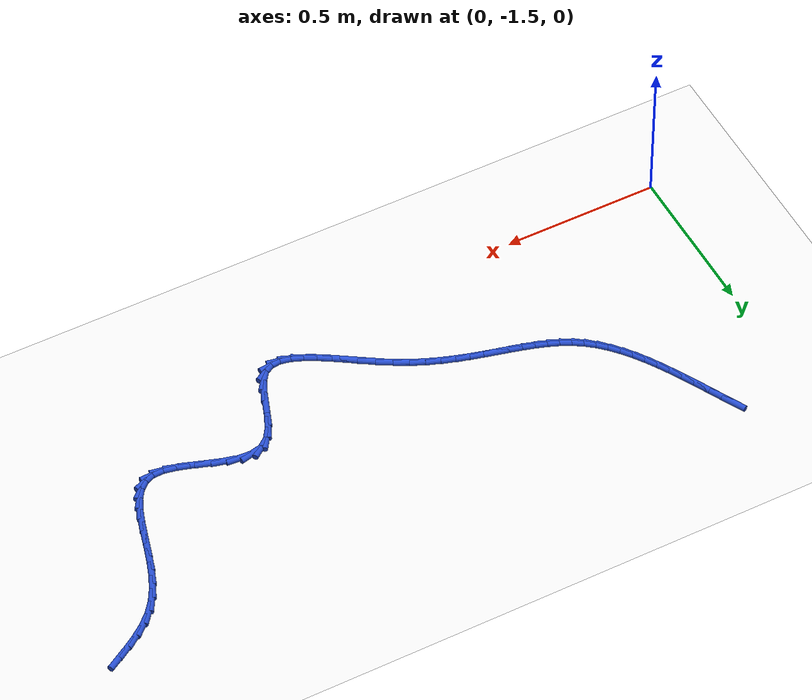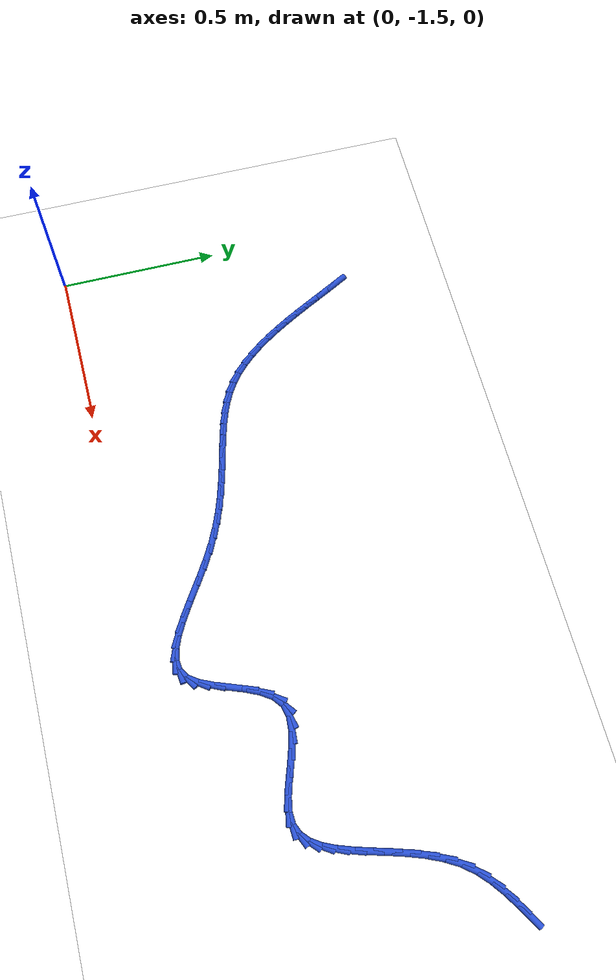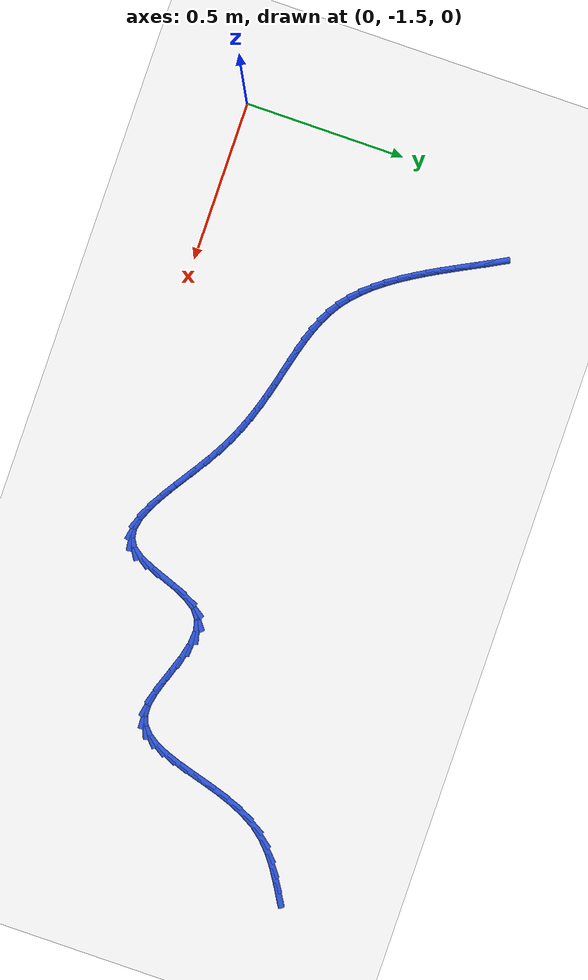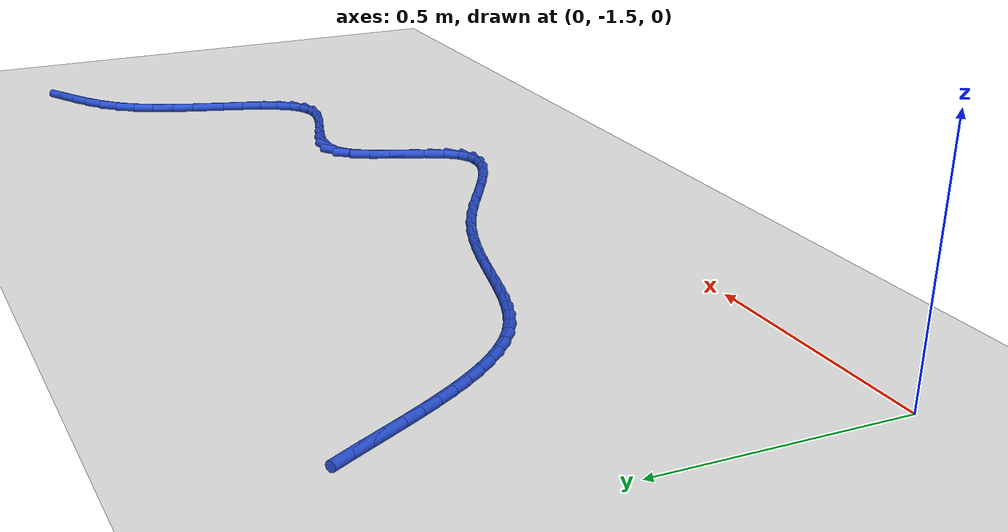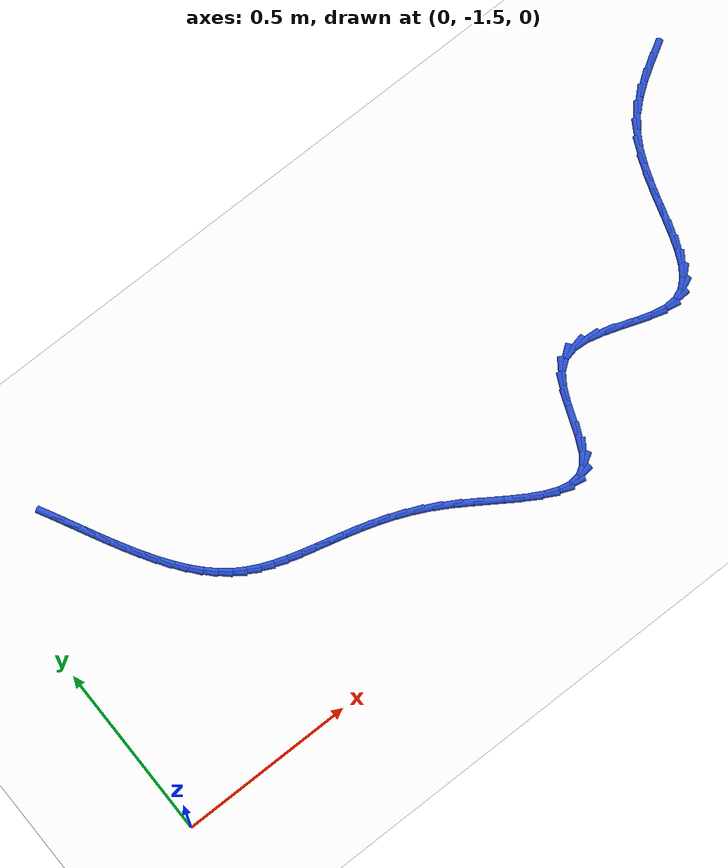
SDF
<sdf version="1.6">
 <world name="default">
  <model name="ground_plane">
   <static>1</static>
   <link name="link">
    <collision name="collision">
     <geometry><plane><normal>0 0 1</normal><size>100 100</size></plane></geometry>
     <surface><friction><ode><mu>100</mu><mu2>50</mu2></ode></friction></surface>
    </collision>
    <visual name="visual">
     <cast_shadows>0</cast_shadows>
     <geometry><plane><normal>0 0 1</normal><size>100 100</size></plane></geometry>
     <material>
      <script><uri>file://media/materials/scripts/gazebo.material</uri><name>Gazebo/WhiteGlow</name></script>
     </material>
    </visual>
   </link>
  </model>
  <model name="line">
   <link name="link_118">
    <pose>2.240297926096695 -0.631889515291526 0.01 0 1.57 0.5348942899872329</pose>
    <collision name="collision">
     <geometry><cylinder><radius>0.01</radius><length>0.08</length></cylinder></geometry>
    </collision>
    <visual name="visual">
     <material>
      <script><name>Gazebo/Blue</name><uri>file://media/materials/scripts/gazebo.material</uri></script>
     </material>
     <geometry><cylinder><radius>0.01</radius><length>0.08</length></cylinder></geometry>
    </visual>
   </link>
   <link name="link_119">
    <pose>2.2025275790639847 -0.6542688412336124 0.01 0 1.57 0.5726560668674543</pose>
    <collision name="collision">
     <geometry><cylinder><radius>0.01</radius><length>0.08</length></cylinder></geometry>
    </collision>
    <visual name="visual">
     <material>
      <script><name>Gazebo/Blue</name><uri>file://media/materials/scripts/gazebo.material</uri></script>
     </material>
     <geometry><cylinder><radius>0.01</radius><length>0.08</length></cylinder></geometry>
    </visual>
   </link>
   <link name="link_120">
    <pose>2.164555911484307 -0.6787500197444742 0.01 0 1.57 0.6460154613833728</pose>
    <collision name="collision">
     <geometry><cylinder><radius>0.01</radius><length>0.08</length></cylinder></geometry>
    </collision>
    <visual name="visual">
     <material>
      <script><name>Gazebo/Blue</name><uri>file://media/materials/scripts/gazebo.material</uri></script>
     </material>
     <geometry><cylinder><radius>0.01</radius><length>0.08</length></cylinder></geometry>
    </visual>
   </link>
   <link name="link_121">
    <pose>2.1279786991889336 -0.7063269007795656 0.01 0 1.57 0.7559745170893589</pose>
    <collision name="collision">
     <geometry><cylinder><radius>0.01</radius><length>0.08</length></cylinder></geometry>
    </collision>
    <visual name="visual">
     <material>
      <script><name>Gazebo/Blue</name><uri>file://media/materials/scripts/gazebo.material</uri></script>
     </material>
     <geometry><cylinder><radius>0.01</radius><length>0.08</length></cylinder></geometry>
    </visual>
   </link>
   <link name="link_122">
    <pose>2.0943917180091356 -0.737993334294341 0.01 0 1.57 0.9018670380567247</pose>
    <collision name="collision">
     <geometry><cylinder><radius>0.01</radius><length>0.08</length></cylinder></geometry>
    </collision>
    <visual name="visual">
     <material>
      <script><name>Gazebo/Blue</name><uri>file://media/materials/scripts/gazebo.material</uri></script>
     </material>
     <geometry><cylinder><radius>0.01</radius><length>0.08</length></cylinder></geometry>
    </visual>
   </link>
   <link name="link_123">
    <pose>2.0653619085188892 -0.7747160871468728 0.01 0 1.57 1.0488111080520988</pose>
    <collision name="collision">
     <geometry><cylinder><radius>0.01</radius><length>0.08</length></cylinder></geometry>
    </collision>
    <visual name="visual">
     <material>
      <script><name>Gazebo/Blue</name><uri>file://media/materials/scripts/gazebo.material</uri></script>
     </material>
     <geometry><cylinder><radius>0.01</radius><length>0.08</length></cylinder></geometry>
    </visual>
   </link>
   <link name="link_124">
    <pose>2.0413643449102836 -0.8164364065251083 0.01 0 1.57 1.1573748766509249</pose>
    <collision name="collision">
     <geometry><cylinder><radius>0.01</radius><length>0.08</length></cylinder></geometry>
    </collision>
    <visual name="visual">
     <material>
      <script><name>Gazebo/Blue</name><uri>file://media/materials/scripts/gazebo.material</uri></script>
     </material>
     <geometry><cylinder><radius>0.01</radius><length>0.08</length></cylinder></geometry>
    </visual>
   </link>
   <link name="link_125">
    <pose>2.02147233959226 -0.8617789551838699 0.01 0 1.57 1.230766386960012</pose>
    <collision name="collision">
     <geometry><cylinder><radius>0.01</radius><length>0.08</length></cylinder></geometry>
    </collision>
    <visual name="visual">
     <material>
      <script><name>Gazebo/Blue</name><uri>file://media/materials/scripts/gazebo.material</uri></script>
     </material>
     <geometry><cylinder><radius>0.01</radius><length>0.08</length></cylinder></geometry>
    </visual>
   </link>
   <link name="link_126">
    <pose>2.004667175334034 -0.9092819583730446 0.01 0 1.57 1.2740845284288185</pose>
    <collision name="collision">
     <geometry><cylinder><radius>0.01</radius><length>0.08</length></cylinder></geometry>
    </collision>
    <visual name="visual">
     <material>
      <script><name>Gazebo/Blue</name><uri>file://media/materials/scripts/gazebo.material</uri></script>
     </material>
     <geometry><cylinder><radius>0.01</radius><length>0.08</length></cylinder></geometry>
    </visual>
   </link>
   <link name="link_127">
    <pose>1.9899301349048213 -0.9574836413425195 0.01 0 1.57 1.2898919363264685</pose>
    <collision name="collision">
     <geometry><cylinder><radius>0.01</radius><length>0.08</length></cylinder></geometry>
    </collision>
    <visual name="visual">
     <material>
      <script><name>Gazebo/Blue</name><uri>file://media/materials/scripts/gazebo.material</uri></script>
     </material>
     <geometry><cylinder><radius>0.01</radius><length>0.08</length></cylinder></geometry>
    </visual>
   </link>
   <link name="link_128">
    <pose>1.9762425010738383 -1.004922229342182 0.01 0 1.57 1.2774570062393986</pose>
    <collision name="collision">
     <geometry><cylinder><radius>0.01</radius><length>0.08</length></cylinder></geometry>
    </collision>
    <visual name="visual">
     <material>
      <script><name>Gazebo/Blue</name><uri>file://media/materials/scripts/gazebo.material</uri></script>
     </material>
     <geometry><cylinder><radius>0.01</radius><length>0.08</length></cylinder></geometry>
    </visual>
   </link>
   <link name="link_129">
    <pose>1.9625855566103017 -1.0501359476219196 0.01 0 1.57 1.231753026772251</pose>
    <collision name="collision">
     <geometry><cylinder><radius>0.01</radius><length>0.08</length></cylinder></geometry>
    </collision>
    <visual name="visual">
     <material>
      <script><name>Gazebo/Blue</name><uri>file://media/materials/scripts/gazebo.material</uri></script>
     </material>
     <geometry><cylinder><radius>0.01</radius><length>0.08</length></cylinder></geometry>
    </visual>
   </link>
   <link name="link_130">
    <pose>1.9479405842834254 -1.0916630214316188 0.01 0 1.57 1.141530122550871</pose>
    <collision name="collision">
     <geometry><cylinder><radius>0.01</radius><length>0.08</length></cylinder></geometry>
    </collision>
    <visual name="visual">
     <material>
      <script><name>Gazebo/Blue</name><uri>file://media/materials/scripts/gazebo.material</uri></script>
     </material>
     <geometry><cylinder><radius>0.01</radius><length>0.08</length></cylinder></geometry>
    </visual>
   </link>
   <link name="link_131">
    <pose>1.9312888668624275 -1.1280416760211673 0.01 0 1.57 0.9867217538519114</pose>
    <collision name="collision">
     <geometry><cylinder><radius>0.01</radius><length>0.08</length></cylinder></geometry>
    </collision>
    <visual name="visual">
     <material>
      <script><name>Gazebo/Blue</name><uri>file://media/materials/scripts/gazebo.material</uri></script>
     </material>
     <geometry><cylinder><radius>0.01</radius><length>0.08</length></cylinder></geometry>
    </visual>
   </link>
   <link name="link_132">
    <pose>1.9116116871165223 -1.1578101366404516 0.01 0 1.57 0.7408445931452077</pose>
    <collision name="collision">
     <geometry><cylinder><radius>0.01</radius><length>0.08</length></cylinder></geometry>
    </collision>
    <visual name="visual">
     <material>
      <script><name>Gazebo/Blue</name><uri>file://media/materials/scripts/gazebo.material</uri></script>
     </material>
     <geometry><cylinder><radius>0.01</radius><length>0.08</length></cylinder></geometry>
    </visual>
   </link>
   <link name="link_133">
    <pose>1.887890327814927 -1.1795066285393598 0.01 0 1.57 0.3997924974700675</pose>
    <collision name="collision">
     <geometry><cylinder><radius>0.01</radius><length>0.08</length></cylinder></geometry>
    </collision>
    <visual name="visual">
     <material>
      <script><name>Gazebo/Blue</name><uri>file://media/materials/scripts/gazebo.material</uri></script>
     </material>
     <geometry><cylinder><radius>0.01</radius><length>0.08</length></cylinder></geometry>
    </visual>
   </link>
   <link name="link_134">
    <pose>1.8591060717268573 -1.191669376967779 0.01 0 1.57 0.040378917748941756</pose>
    <collision name="collision">
     <geometry><cylinder><radius>0.01</radius><length>0.08</length></cylinder></geometry>
    </collision>
    <visual name="visual">
     <material>
      <script><name>Gazebo/Blue</name><uri>file://media/materials/scripts/gazebo.material</uri></script>
     </material>
     <geometry><cylinder><radius>0.01</radius><length>0.08</length></cylinder></geometry>
    </visual>
   </link>
   <link name="link_135">
    <pose>1.8243736809927054 -1.1930725960288122 0.01 0 1.57 -0.19264231231949314</pose>
    <collision name="collision">
     <geometry><cylinder><radius>0.01</radius><length>0.08</length></cylinder></geometry>
    </collision>
    <visual name="visual">
     <material>
      <script><name>Gazebo/Blue</name><uri>file://media/materials/scripts/gazebo.material</uri></script>
     </material>
     <geometry><cylinder><radius>0.01</radius><length>0.08</length></cylinder></geometry>
    </visual>
   </link>
   <link name="link_136">
    <pose>1.784380933090215 -1.1852715594176126 0.01 0 1.57 -0.30354162155065684</pose>
    <collision name="collision">
     <geometry><cylinder><radius>0.01</radius><length>0.08</length></cylinder></geometry>
    </collision>
    <visual name="visual">
     <material>
      <script><name>Gazebo/Blue</name><uri>file://media/materials/scripts/gazebo.material</uri></script>
     </material>
     <geometry><cylinder><radius>0.01</radius><length>0.08</length></cylinder></geometry>
    </visual>
   </link>
   <link name="link_137">
    <pose>1.7408406691202702 -1.1716338327720202 0.01 0 1.57 -0.3406120776976363</pose>
    <collision name="collision">
     <geometry><cylinder><radius>0.01</radius><length>0.08</length></cylinder></geometry>
    </collision>
    <visual name="visual">
     <material>
      <script><name>Gazebo/Blue</name><uri>file://media/materials/scripts/gazebo.material</uri></script>
     </material>
     <geometry><cylinder><radius>0.01</radius><length>0.08</length></cylinder></geometry>
    </visual>
   </link>
   <link name="link_138">
    <pose>1.6954832794318173 -1.155558008448746 0.01 0 1.57 -0.3211025676102783</pose>
    <collision name="collision">
     <geometry><cylinder><radius>0.01</radius><length>0.08</length></cylinder></geometry>
    </collision>
    <visual name="visual">
     <material>
      <script><name>Gazebo/Blue</name><uri>file://media/materials/scripts/gazebo.material</uri></script>
     </material>
     <geometry><cylinder><radius>0.01</radius><length>0.08</length></cylinder></geometry>
    </visual>
   </link>
   <link name="link_139">
    <pose>1.6500391543738022 -1.140442678804502 0.01 0 1.57 -0.24080839545143007</pose>
    <collision name="collision">
     <geometry><cylinder><radius>0.01</radius><length>0.08</length></cylinder></geometry>
    </collision>
    <visual name="visual">
     <material>
      <script><name>Gazebo/Blue</name><uri>file://media/materials/scripts/gazebo.material</uri></script>
     </material>
     <geometry><cylinder><radius>0.01</radius><length>0.08</length></cylinder></geometry>
    </visual>
   </link>
   <link name="link_140">
    <pose>1.6062386842951706 -1.1296864361959993 0.01 0 1.57 -0.07403776775943223</pose>
    <collision name="collision">
     <geometry><cylinder><radius>0.01</radius><length>0.08</length></cylinder></geometry>
    </collision>
    <visual name="visual">
     <material>
      <script><name>Gazebo/Blue</name><uri>file://media/materials/scripts/gazebo.material</uri></script>
     </material>
     <geometry><cylinder><radius>0.01</radius><length>0.08</length></cylinder></geometry>
    </visual>
   </link>
   <link name="link_141">
    <pose>1.5658122595448687 -1.126687872979949 0.01 0 1.57 0.22697302803071048</pose>
    <collision name="collision">
     <geometry><cylinder><radius>0.01</radius><length>0.08</length></cylinder></geometry>
    </collision>
    <visual name="visual">
     <material>
      <script><name>Gazebo/Blue</name><uri>file://media/materials/scripts/gazebo.material</uri></script>
     </material>
     <geometry><cylinder><radius>0.01</radius><length>0.08</length></cylinder></geometry>
    </visual>
   </link>
   <link name="link_142">
    <pose>1.5304902704718408 -1.134845581513063 0.01 0 1.57 0.6540623513256104</pose>
    <collision name="collision">
     <geometry><cylinder><radius>0.01</radius><length>0.08</length></cylinder></geometry>
    </collision>
    <visual name="visual">
     <material>
      <script><name>Gazebo/Blue</name><uri>file://media/materials/scripts/gazebo.material</uri></script>
     </material>
     <geometry><cylinder><radius>0.01</radius><length>0.08</length></cylinder></geometry>
    </visual>
   </link>
   <link name="link_143">
    <pose>1.5017073337141384 -1.1569115686398688 0.01 0 1.57 0.9740331406166568</pose>
    <collision name="collision">
     <geometry><cylinder><radius>0.01</radius><length>0.08</length></cylinder></geometry>
    </collision>
    <visual name="visual">
     <material>
      <script><name>Gazebo/Blue</name><uri>file://media/materials/scripts/gazebo.material</uri></script>
     </material>
     <geometry><cylinder><radius>0.01</radius><length>0.08</length></cylinder></geometry>
    </visual>
   </link>
   <link name="link_144">
    <pose>1.4786844989627435 -1.1907988028945242 0.01 0 1.57 1.139906556812258</pose>
    <collision name="collision">
     <geometry><cylinder><radius>0.01</radius><length>0.08</length></cylinder></geometry>
    </collision>
    <visual name="visual">
     <material>
      <script><name>Gazebo/Blue</name><uri>file://media/materials/scripts/gazebo.material</uri></script>
     </material>
     <geometry><cylinder><radius>0.01</radius><length>0.08</length></cylinder></geometry>
    </visual>
   </link>
   <link name="link_145">
    <pose>1.4596397790910138 -1.2322275323273464 0.01 0 1.57 1.210090178165145</pose>
    <collision name="collision">
     <geometry><cylinder><radius>0.01</radius><length>0.08</length></cylinder></geometry>
    </collision>
    <visual name="visual">
     <material>
      <script><name>Gazebo/Blue</name><uri>file://media/materials/scripts/gazebo.material</uri></script>
     </material>
     <geometry><cylinder><radius>0.01</radius><length>0.08</length></cylinder></geometry>
    </visual>
   </link>
   <link name="link_146">
    <pose>1.4427862171116066 -1.2769071404668588 0.01 0 1.57 1.2103309697711808</pose>
    <collision name="collision">
     <geometry><cylinder><radius>0.01</radius><length>0.08</length></cylinder></geometry>
    </collision>
    <visual name="visual">
     <material>
      <script><name>Gazebo/Blue</name><uri>file://media/materials/scripts/gazebo.material</uri></script>
     </material>
     <geometry><cylinder><radius>0.01</radius><length>0.08</length></cylinder></geometry>
    </visual>
   </link>
   <link name="link_147">
    <pose>1.4263368560371774 -1.3205470108415858 0.01 0 1.57 1.1351482765720096</pose>
    <collision name="collision">
     <geometry><cylinder><radius>0.01</radius><length>0.08</length></cylinder></geometry>
    </collision>
    <visual name="visual">
     <material>
      <script><name>Gazebo/Blue</name><uri>file://media/materials/scripts/gazebo.material</uri></script>
     </material>
     <geometry><cylinder><radius>0.01</radius><length>0.08</length></cylinder></geometry>
    </visual>
   </link>
   <link name="link_148">
    <pose>1.4085047388803822 -1.3588565269800503 0.01 0 1.57 0.9388739038428346</pose>
    <collision name="collision">
     <geometry><cylinder><radius>0.01</radius><length>0.08</length></cylinder></geometry>
    </collision>
    <visual name="visual">
     <material>
      <script><name>Gazebo/Blue</name><uri>file://media/materials/scripts/gazebo.material</uri></script>
     </material>
     <geometry><cylinder><radius>0.01</radius><length>0.08</length></cylinder></geometry>
    </visual>
   </link>
   <link name="link_149">
    <pose>1.3875029086538768 -1.3875450724107758 0.01 0 1.57 0.5504166617686267</pose>
    <collision name="collision">
     <geometry><cylinder><radius>0.01</radius><length>0.08</length></cylinder></geometry>
    </collision>
    <visual name="visual">
     <material>
      <script><name>Gazebo/Blue</name><uri>file://media/materials/scripts/gazebo.material</uri></script>
     </material>
     <geometry><cylinder><radius>0.01</radius><length>0.08</length></cylinder></geometry>
    </visual>
   </link>
   <link name="link_150">
    <pose>1.361900022455528 -1.4032570168929985 0.01 0 1.57 0.11615054075206706</pose>
    <collision name="collision">
     <geometry><cylinder><radius>0.01</radius><length>0.08</length></cylinder></geometry>
    </collision>
    <visual name="visual">
     <material>
      <script><name>Gazebo/Blue</name><uri>file://media/materials/scripts/gazebo.material</uri></script>
     </material>
     <geometry><cylinder><radius>0.01</radius><length>0.08</length></cylinder></geometry>
    </visual>
   </link>
   <link name="link_151">
    <pose>1.331834848777877 -1.4067648921338576 0.01 0 1.57 -0.19721433773465905</pose>
    <collision name="collision">
     <geometry><cylinder><radius>0.01</radius><length>0.08</length></cylinder></geometry>
    </collision>
    <visual name="visual">
     <material>
      <script><name>Gazebo/Blue</name><uri>file://media/materials/scripts/gazebo.material</uri></script>
     </material>
     <geometry><cylinder><radius>0.01</radius><length>0.08</length></cylinder></geometry>
    </visual>
   </link>
   <link name="link_152">
    <pose>1.2978793506790536 -1.399980191908897 0.01 0 1.57 -0.3864178465983525</pose>
    <collision name="collision">
     <geometry><cylinder><radius>0.01</radius><length>0.08</length></cylinder></geometry>
    </collision>
    <visual name="visual">
     <material>
      <script><name>Gazebo/Blue</name><uri>file://media/materials/scripts/gazebo.material</uri></script>
     </material>
     <geometry><cylinder><radius>0.01</radius><length>0.08</length></cylinder></geometry>
    </visual>
   </link>
   <link name="link_153">
    <pose>1.2606055052177263 -1.3848144468040975 0.01 0 1.57 -0.4956040826320122</pose>
    <collision name="collision">
     <geometry><cylinder><radius>0.01</radius><length>0.08</length></cylinder></geometry>
    </collision>
    <visual name="visual">
     <material>
      <script><name>Gazebo/Blue</name><uri>file://media/materials/scripts/gazebo.material</uri></script>
     </material>
     <geometry><cylinder><radius>0.01</radius><length>0.08</length></cylinder></geometry>
    </visual>
   </link>
   <link name="link_154">
    <pose>1.2205852894525617 -1.3631791874054393 0.01 0 1.57 -0.5555533698530342</pose>
    <collision name="collision">
     <geometry><cylinder><radius>0.01</radius><length>0.08</length></cylinder></geometry>
    </collision>
    <visual name="visual">
     <material>
      <script><name>Gazebo/Blue</name><uri>file://media/materials/scripts/gazebo.material</uri></script>
     </material>
     <geometry><cylinder><radius>0.01</radius><length>0.08</length></cylinder></geometry>
    </visual>
   </link>
   <link name="link_155">
    <pose>1.1783906804422277 -1.3369859442989025 0.01 0 1.57 -0.5823171565447595</pose>
    <collision name="collision">
     <geometry><cylinder><radius>0.01</radius><length>0.08</length></cylinder></geometry>
    </collision>
    <visual name="visual">
     <material>
      <script><name>Gazebo/Blue</name><uri>file://media/materials/scripts/gazebo.material</uri></script>
     </material>
     <geometry><cylinder><radius>0.01</radius><length>0.08</length></cylinder></geometry>
    </visual>
   </link>
   <link name="link_156">
    <pose>1.1345936552453926 -1.3081462480704686 0.01 0 1.57 -0.5831941681795176</pose>
    <collision name="collision">
     <geometry><cylinder><radius>0.01</radius><length>0.08</length></cylinder></geometry>
    </collision>
    <visual name="visual">
     <material>
      <script><name>Gazebo/Blue</name><uri>file://media/materials/scripts/gazebo.material</uri></script>
     </material>
     <geometry><cylinder><radius>0.01</radius><length>0.08</length></cylinder></geometry>
    </visual>
   </link>
   <link name="link_157">
    <pose>1.089766190920723 -1.278571629306117 0.01 0 1.57 -0.560095422615848</pose>
    <collision name="collision">
     <geometry><cylinder><radius>0.01</radius><length>0.08</length></cylinder></geometry>
    </collision>
    <visual name="visual">
     <material>
      <script><name>Gazebo/Blue</name><uri>file://media/materials/scripts/gazebo.material</uri></script>
     </material>
     <geometry><cylinder><radius>0.01</radius><length>0.08</length></cylinder></geometry>
    </visual>
   </link>
   <link name="link_158">
    <pose>1.0444802645268874 -1.2501736185918286 0.01 0 1.57 -0.511260427095678</pose>
    <collision name="collision">
     <geometry><cylinder><radius>0.01</radius><length>0.08</length></cylinder></geometry>
    </collision>
    <visual name="visual">
     <material>
      <script><name>Gazebo/Blue</name><uri>file://media/materials/scripts/gazebo.material</uri></script>
     </material>
     <geometry><cylinder><radius>0.01</radius><length>0.08</length></cylinder></geometry>
    </visual>
   </link>
   <link name="link_159">
    <pose>0.999300970758416 -1.2248273717233324 0.01 0 1.57 -0.44857733694113494</pose>
    <collision name="collision">
     <geometry><cylinder><radius>0.01</radius><length>0.08</length></cylinder></geometry>
    </collision>
    <visual name="visual">
     <material>
      <script><name>Gazebo/Blue</name><uri>file://media/materials/scripts/gazebo.material</uri></script>
     </material>
     <geometry><cylinder><radius>0.01</radius><length>0.08</length></cylinder></geometry>
    </visual>
   </link>
   <link name="link_160">
    <pose>0.9545847750336244 -1.203305393428923 0.01 0 1.57 -0.39109718275592154</pose>
    <collision name="collision">
     <geometry><cylinder><radius>0.01</radius><length>0.08</length></cylinder></geometry>
    </collision>
    <visual name="visual">
     <material>
      <script><name>Gazebo/Blue</name><uri>file://media/materials/scripts/gazebo.material</uri></script>
     </material>
     <geometry><cylinder><radius>0.01</radius><length>0.08</length></cylinder></geometry>
    </visual>
   </link>
   <link name="link_161">
    <pose>0.9104470025127223 -1.1851057097643467 0.01 0 1.57 -0.3415907939661227</pose>
    <collision name="collision">
     <geometry><cylinder><radius>0.01</radius><length>0.08</length></cylinder></geometry>
    </collision>
    <visual name="visual">
     <material>
      <script><name>Gazebo/Blue</name><uri>file://media/materials/scripts/gazebo.material</uri></script>
     </material>
     <geometry><cylinder><radius>0.01</radius><length>0.08</length></cylinder></geometry>
    </visual>
   </link>
   <link name="link_162">
    <pose>0.8669895510167317 -1.169655380379505 0.01 0 1.57 -0.3015587194251946</pose>
    <collision name="collision">
     <geometry><cylinder><radius>0.01</radius><length>0.08</length></cylinder></geometry>
    </collision>
    <visual name="visual">
     <material>
      <script><name>Gazebo/Blue</name><uri>file://media/materials/scripts/gazebo.material</uri></script>
     </material>
     <geometry><cylinder><radius>0.01</radius><length>0.08</length></cylinder></geometry>
    </visual>
   </link>
   <link name="link_163">
    <pose>0.8243143183666753 -1.1563814649242992 0.01 0 1.57 -0.2723191470556252</pose>
    <collision name="collision">
     <geometry><cylinder><radius>0.01</radius><length>0.08</length></cylinder></geometry>
    </collision>
    <visual name="visual">
     <material>
      <script><name>Gazebo/Blue</name><uri>file://media/materials/scripts/gazebo.material</uri></script>
     </material>
     <geometry><cylinder><radius>0.01</radius><length>0.08</length></cylinder></geometry>
    </visual>
   </link>
   <link name="link_164">
    <pose>0.7825232023835749 -1.1447110230486301 0.01 0 1.57 -0.2550699455229081</pose>
    <collision name="collision">
     <geometry><cylinder><radius>0.01</radius><length>0.08</length></cylinder></geometry>
    </collision>
    <visual name="visual">
     <material>
      <script><name>Gazebo/Blue</name><uri>file://media/materials/scripts/gazebo.material</uri></script>
     </material>
     <geometry><cylinder><radius>0.01</radius><length>0.08</length></cylinder></geometry>
    </visual>
   </link>
   <link name="link_165">
    <pose>0.7417181008884532 -1.1340711144024005 0.01 0 1.57 -0.25096538521729544</pose>
    <collision name="collision">
     <geometry><cylinder><radius>0.01</radius><length>0.08</length></cylinder></geometry>
    </collision>
    <visual name="visual">
     <material>
      <script><name>Gazebo/Blue</name><uri>file://media/materials/scripts/gazebo.material</uri></script>
     </material>
     <geometry><cylinder><radius>0.01</radius><length>0.08</length></cylinder></geometry>
    </visual>
   </link>
   <link name="link_166">
    <pose>0.7020009117023325 -1.123888798635511 0.01 0 1.57 -0.2611765017985004</pose>
    <collision name="collision">
     <geometry><cylinder><radius>0.01</radius><length>0.08</length></cylinder></geometry>
    </collision>
    <visual name="visual">
     <material>
      <script><name>Gazebo/Blue</name><uri>file://media/materials/scripts/gazebo.material</uri></script>
     </material>
     <geometry><cylinder><radius>0.01</radius><length>0.08</length></cylinder></geometry>
    </visual>
   </link>
   <link name="link_167">
    <pose>0.6634735326462354 -1.1135911353978627 0.01 0 1.57 -0.2868986312682104</pose>
    <collision name="collision">
     <geometry><cylinder><radius>0.01</radius><length>0.08</length></cylinder></geometry>
    </collision>
    <visual name="visual">
     <material>
      <script><name>Gazebo/Blue</name><uri>file://media/materials/scripts/gazebo.material</uri></script>
     </material>
     <geometry><cylinder><radius>0.01</radius><length>0.08</length></cylinder></geometry>
    </visual>
   </link>
   <link name="link_168">
    <pose>0.6262378615411833 -1.1026051843393578 0.01 0 1.57 -0.32926019871542733</pose>
    <collision name="collision">
     <geometry><cylinder><radius>0.01</radius><length>0.08</length></cylinder></geometry>
    </collision>
    <visual name="visual">
     <material>
      <script><name>Gazebo/Blue</name><uri>file://media/materials/scripts/gazebo.material</uri></script>
     </material>
     <geometry><cylinder><radius>0.01</radius><length>0.08</length></cylinder></geometry>
    </visual>
   </link>
   <link name="link_169">
    <pose>0.590395796208199 -1.090358005109897 0.01 0 1.57 -0.3890787224703426</pose>
    <collision name="collision">
     <geometry><cylinder><radius>0.01</radius><length>0.08</length></cylinder></geometry>
    </collision>
    <visual name="visual">
     <material>
      <script><name>Gazebo/Blue</name><uri>file://media/materials/scripts/gazebo.material</uri></script>
     </material>
     <geometry><cylinder><radius>0.01</radius><length>0.08</length></cylinder></geometry>
    </visual>
   </link>
   <link name="link_170">
    <pose>0.5560492344683047 -1.0762766573593823 0.01 0 1.57 -0.4664255244072326</pose>
    <collision name="collision">
     <geometry><cylinder><radius>0.01</radius><length>0.08</length></cylinder></geometry>
    </collision>
    <visual name="visual">
     <material>
      <script><name>Gazebo/Blue</name><uri>file://media/materials/scripts/gazebo.material</uri></script>
     </material>
     <geometry><cylinder><radius>0.01</radius><length>0.08</length></cylinder></geometry>
    </visual>
   </link>
   <link name="link_171">
    <pose>0.523300074142523 -1.0597882007377148 0.01 0 1.57 -0.5600418412264792</pose>
    <collision name="collision">
     <geometry><cylinder><radius>0.01</radius><length>0.08</length></cylinder></geometry>
    </collision>
    <visual name="visual">
     <material>
      <script><name>Gazebo/Blue</name><uri>file://media/materials/scripts/gazebo.material</uri></script>
     </material>
     <geometry><cylinder><radius>0.01</radius><length>0.08</length></cylinder></geometry>
    </visual>
   </link>
   <link name="link_172">
    <pose>0.49225021305187605 -1.0403196948947961 0.01 0 1.57 -0.6635240244080282</pose>
    <collision name="collision">
     <geometry><cylinder><radius>0.01</radius><length>0.08</length></cylinder></geometry>
    </collision>
    <visual name="visual">
     <material>
      <script><name>Gazebo/Blue</name><uri>file://media/materials/scripts/gazebo.material</uri></script>
     </material>
     <geometry><cylinder><radius>0.01</radius><length>0.08</length></cylinder></geometry>
    </visual>
   </link>
   <link name="link_173">
    <pose>0.4629642484970315 -1.017424891208234 0.01 0 1.57 -0.7578441790830175</pose>
    <collision name="collision">
     <geometry><cylinder><radius>0.01</radius><length>0.08</length></cylinder></geometry>
    </collision>
    <visual name="visual">
     <material>
      <script><name>Gazebo/Blue</name><uri>file://media/materials/scripts/gazebo.material</uri></script>
     </material>
     <geometry><cylinder><radius>0.01</radius><length>0.08</length></cylinder></geometry>
    </visual>
   </link>
   <link name="link_174">
    <pose>0.43532652993200194 -0.9912697553328338 0.01 0 1.57 -0.8379592302786902</pose>
    <collision name="collision">
     <geometry><cylinder><radius>0.01</radius><length>0.08</length></cylinder></geometry>
    </collision>
    <visual name="visual">
     <material>
      <script><name>Gazebo/Blue</name><uri>file://media/materials/scripts/gazebo.material</uri></script>
     </material>
     <geometry><cylinder><radius>0.01</radius><length>0.08</length></cylinder></geometry>
    </visual>
   </link>
   <link name="link_175">
    <pose>0.4091670332242428 -0.9622049335540483 0.01 0 1.57 -0.9047484845513798</pose>
    <collision name="collision">
     <geometry><cylinder><radius>0.01</radius><length>0.08</length></cylinder></geometry>
    </collision>
    <visual name="visual">
     <material>
      <script><name>Gazebo/Blue</name><uri>file://media/materials/scripts/gazebo.material</uri></script>
     </material>
     <geometry><cylinder><radius>0.01</radius><length>0.08</length></cylinder></geometry>
    </visual>
   </link>
   <link name="link_176">
    <pose>0.3843157229802243 -0.9305811104054191 0.01 0 1.57 -0.9594623838422952</pose>
    <collision name="collision">
     <geometry><cylinder><radius>0.01</radius><length>0.08</length></cylinder></geometry>
    </collision>
    <visual name="visual">
     <material>
      <script><name>Gazebo/Blue</name><uri>file://media/materials/scripts/gazebo.material</uri></script>
     </material>
     <geometry><cylinder><radius>0.01</radius><length>0.08</length></cylinder></geometry>
    </visual>
   </link>
   <link name="link_177">
    <pose>0.3606025638064166 -0.8967489704204881 0.01 0 1.57 -1.0034018853895208</pose>
    <collision name="collision">
     <geometry><cylinder><radius>0.01</radius><length>0.08</length></cylinder></geometry>
    </collision>
    <visual name="visual">
     <material>
      <script><name>Gazebo/Blue</name><uri>file://media/materials/scripts/gazebo.material</uri></script>
     </material>
     <geometry><cylinder><radius>0.01</radius><length>0.08</length></cylinder></geometry>
    </visual>
   </link>
   <link name="link_178">
    <pose>0.3378575203092901 -0.8610591981327967 0.01 0 1.57 -1.037744301117872</pose>
    <collision name="collision">
     <geometry><cylinder><radius>0.01</radius><length>0.08</length></cylinder></geometry>
    </collision>
    <visual name="visual">
     <material>
      <script><name>Gazebo/Blue</name><uri>file://media/materials/scripts/gazebo.material</uri></script>
     </material>
     <geometry><cylinder><radius>0.01</radius><length>0.08</length></cylinder></geometry>
    </visual>
   </link>
   <link name="link_179">
    <pose>0.3159105570953151 -0.8238624780758873 0.01 0 1.57 -1.0634646326859907</pose>
    <collision name="collision">
     <geometry><cylinder><radius>0.01</radius><length>0.08</length></cylinder></geometry>
    </collision>
    <visual name="visual">
     <material>
      <script><name>Gazebo/Blue</name><uri>file://media/materials/scripts/gazebo.material</uri></script>
     </material>
     <geometry><cylinder><radius>0.01</radius><length>0.08</length></cylinder></geometry>
    </visual>
   </link>
   <link name="link_180">
    <pose>0.2945916387709618 -0.7855094947833012 0.01 0 1.57 -1.0813094760081126</pose>
    <collision name="collision">
     <geometry><cylinder><radius>0.01</radius><length>0.08</length></cylinder></geometry>
    </collision>
    <visual name="visual">
     <material>
      <script><name>Gazebo/Blue</name><uri>file://media/materials/scripts/gazebo.material</uri></script>
     </material>
     <geometry><cylinder><radius>0.01</radius><length>0.08</length></cylinder></geometry>
    </visual>
   </link>
   <link name="link_181">
    <pose>0.27373072994270053 -0.7463509327885804 0.01 0 1.57 -1.0917950582741758</pose>
    <collision name="collision">
     <geometry><cylinder><radius>0.01</radius><length>0.08</length></cylinder></geometry>
    </collision>
    <visual name="visual">
     <material>
      <script><name>Gazebo/Blue</name><uri>file://media/materials/scripts/gazebo.material</uri></script>
     </material>
     <geometry><cylinder><radius>0.01</radius><length>0.08</length></cylinder></geometry>
    </visual>
   </link>
   <link name="link_182">
    <pose>0.25315779521700144 -0.7067374766252666 0.01 0 1.57 -1.0952129313958823</pose>
    <collision name="collision">
     <geometry><cylinder><radius>0.01</radius><length>0.08</length></cylinder></geometry>
    </collision>
    <visual name="visual">
     <material>
      <script><name>Gazebo/Blue</name><uri>file://media/materials/scripts/gazebo.material</uri></script>
     </material>
     <geometry><cylinder><radius>0.01</radius><length>0.08</length></cylinder></geometry>
    </visual>
   </link>
   <link name="link_183">
    <pose>0.2327027992003351 -0.6670198108269019 0.01 0 1.57 -1.0916346015567677</pose>
    <collision name="collision">
     <geometry><cylinder><radius>0.01</radius><length>0.08</length></cylinder></geometry>
    </collision>
    <visual name="visual">
     <material>
      <script><name>Gazebo/Blue</name><uri>file://media/materials/scripts/gazebo.material</uri></script>
     </material>
     <geometry><cylinder><radius>0.01</radius><length>0.08</length></cylinder></geometry>
    </visual>
   </link>
   <link name="link_184">
    <pose>0.21219570649917152 -0.6275486199270277 0.01 0 1.57 -1.0809109418817002</pose>
    <collision name="collision">
     <geometry><cylinder><radius>0.01</radius><length>0.08</length></cylinder></geometry>
    </collision>
    <visual name="visual">
     <material>
      <script><name>Gazebo/Blue</name><uri>file://media/materials/scripts/gazebo.material</uri></script>
     </material>
     <geometry><cylinder><radius>0.01</radius><length>0.08</length></cylinder></geometry>
    </visual>
   </link>
  </model>
 </world>
</sdf>
